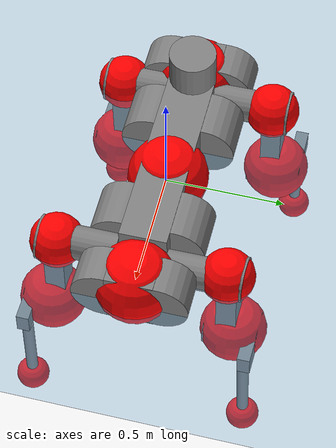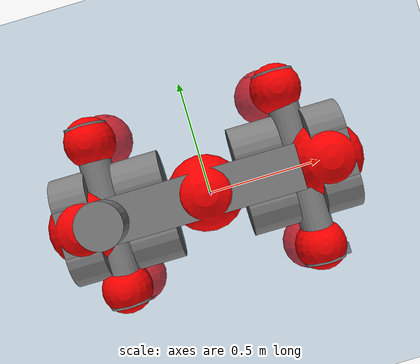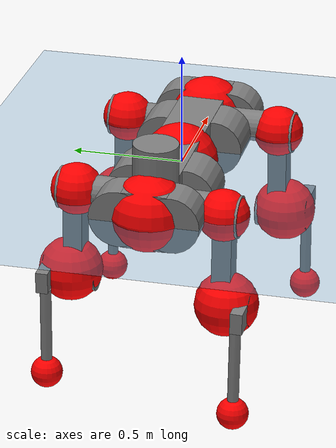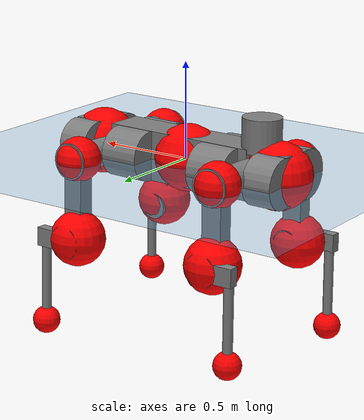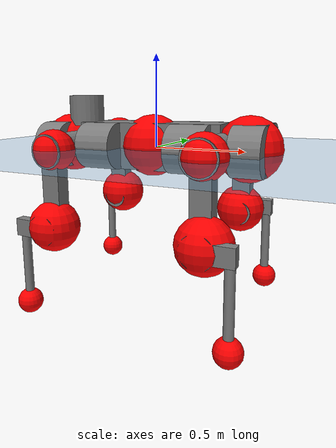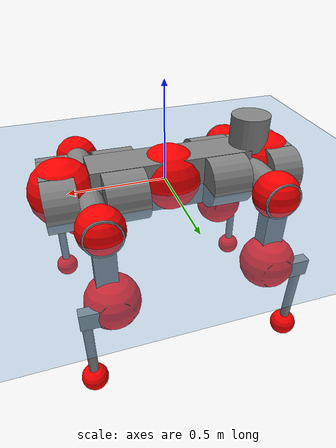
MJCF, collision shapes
<mujoco model="anymal_c">
  <compiler angle="radian" assetdir="assets" balanceinertia="true" inertiafromgeom="false"/>

  <option timestep="0.005" density="1.2" viscosity="2e-05"/>

  <size nkey="1"/>

  <visual>
    <quality shadowsize="8192"/>
    <map shadowclip="0.5"/>
  </visual>

  <default>
    <default class="/">
      <material specular="0" shininess="0.25"/>
      <geom contype="0" conaffinity="0" group="1" solref="-1000 -80"/>
      <site size="0.01 0.005 0.005" group="5"/>
      <general forcelimited="true" forcerange="-80 80" biastype="affine" gainprm="80" biasprm="0 -80 -2"/>
      <default class="anymal_c">
        <joint armature="0.01" damping="0.01" frictionloss="0.1"/>
        <default class="visual">
          <geom type="mesh" group="2"/>
          <default class="visual_zflip"/>
        </default>
        <default class="collision">
          <geom type="cylinder" group="3"/>
          <default class="foot">
            <geom size="0.03 0 0" type="sphere" condim="6" priority="1" friction="0.8 0.02 0.01" solimp="0.015 1 0.03"/>
          </default>
        </default>
      </default>
      <default class="reward_collision_sphere">
        <geom group="5" rgba="1 0 0 1"/>
      </default>
    </default>
  </default>

  <asset>
    <texture type="skybox" colorspace="auto" name="//unnamed_texture_0" builtin="gradient" rgb1="0.95 0.95 0.95" rgb2="0.95 0.95 0.95" width="100" height="600"/>
    <texture type="2d" colorspace="auto" name="texplane" builtin="checker" rgb1="0.345 0.575 0.748" rgb2="0.345 0.575 0.748" markrgb="1 1 1" width="512" height="512"/>
    <texture type="2d" colorspace="linear" name="base" file="base.png"/>
    <texture type="2d" colorspace="linear" name="top_shell" file="top_shell.png"/>
    <texture type="2d" colorspace="linear" name="bottom_shell" file="bottom_shell.png"/>
    <texture type="2d" colorspace="linear" name="remote" file="remote.png"/>
    <texture type="2d" colorspace="linear" name="hatch" file="hatch.png"/>
    <texture type="2d" colorspace="linear" name="handle" file="handle.png"/>
    <texture type="2d" colorspace="linear" name="face" file="face.png"/>
    <texture type="2d" colorspace="linear" name="battery" file="battery.png"/>
    <texture type="2d" colorspace="linear" name="lidar_cage" file="lidar_cage.png"/>
    <texture type="2d" colorspace="linear" name="depth_camera" file="depth_camera.png"/>
    <texture type="2d" colorspace="linear" name="wide_angle_camera" file="wide_angle_camera.png"/>
    <texture type="2d" colorspace="linear" name="lidar" file="lidar.png"/>
    <texture type="2d" colorspace="linear" name="drive" file="drive.png"/>
    <texture type="2d" colorspace="linear" name="hip_l" file="hip_l.png"/>
    <texture type="2d" colorspace="linear" name="shank_l" file="shank_l.png"/>
    <texture type="2d" colorspace="linear" name="foot" file="foot.png"/>
    <texture type="2d" colorspace="linear" name="thigh" file="thigh.png"/>
    <texture type="2d" colorspace="linear" name="shank_r" file="shank_r.png"/>
    <texture type="2d" colorspace="linear" name="hip_r" file="hip_r.png"/>
    <material name="MatPlane" class="/" texture="texplane" texuniform="true" texrepeat="2 2" specular="0.9" shininess="0.5"/>
    <material name="black_plastic" class="/" rgba="0.007 0.007 0.007 1"/>
    <material name="green" class="/" rgba="0.052 0.178 0.033 1"/>
    <material name="red" class="/" rgba="0.178 0.006 0.005 1"/>
    <material name="yellow" class="/" rgba="0.178 0.119 0.006 1"/>
    <material name="lwl" class="/" rgba="0.8 0.8 0.8 1"/>
    <material name="base" class="/" texture="base"/>
    <material name="top_shell" class="/" texture="top_shell"/>
    <material name="bottom_shell" class="/" texture="bottom_shell"/>
    <material name="hip_l" class="/" texture="hip_l"/>
    <material name="thigh" class="/" texture="thigh"/>
    <material name="shank_l" class="/" texture="shank_l"/>
    <material name="foot" class="/" texture="foot"/>
    <material name="hip_r" class="/" texture="hip_r"/>
    <material name="shank" class="/" texture="shank_r"/>
    <material name="hatch" class="/" texture="hatch"/>
    <material name="remote" class="/" texture="remote"/>
    <material name="handle" class="/" texture="handle"/>
    <material name="face" class="/" texture="face"/>
    <material name="depth_camera" class="/" texture="depth_camera"/>
    <material name="wide_angle_camera" class="/" texture="wide_angle_camera"/>
    <material name="battery" class="/" texture="battery"/>
    <material name="lidar_cage" class="/" texture="lidar_cage"/>
    <material name="lidar" class="/" texture="lidar"/>
    <material name="drive" class="/" texture="drive"/>
    <mesh name="base_0" class="/" file="base_0.obj"/>
    <mesh name="base_1" class="/" file="base_1.obj"/>
    <mesh name="base_2" class="/" file="base_2.obj"/>
    <mesh name="base_3" class="/" file="base_3.obj"/>
    <mesh name="base_4" class="/" file="base_4.obj"/>
    <mesh name="base_5" class="/" file="base_5.obj"/>
    <mesh name="top_shell" class="/" file="top_shell.obj"/>
    <mesh name="bottom_shell" class="/" file="bottom_shell.obj"/>
    <mesh name="remote" class="/" file="remote.obj"/>
    <mesh name="handle" class="/" file="handle.obj"/>
    <mesh name="face" class="/" file="face.obj"/>
    <mesh name="wide_angle_camera" class="/" file="wide_angle_camera.obj"/>
    <mesh name="depth_camera" class="/" file="depth_camera.obj"/>
    <mesh name="battery" class="/" file="battery.obj"/>
    <mesh name="lidar_cage" class="/" file="lidar_cage.obj"/>
    <mesh name="lidar" class="/" file="lidar.obj"/>
    <mesh name="drive" class="/" file="drive.obj"/>
    <mesh name="hip_l" class="/" file="hip_l.obj"/>
    <mesh name="thigh" class="/" file="thigh.obj"/>
    <mesh name="shank_l" class="/" file="shank_l.obj"/>
    <mesh name="foot" class="/" file="foot.obj"/>
    <mesh name="hip_r" class="/" file="hip_r.obj"/>
    <mesh name="hatch" class="/" file="hatch.obj"/>
    <mesh name="shank_r" class="/" file="shank_r.obj"/>
  </asset>

  <worldbody>
    <geom name="floor" class="/" size="100 100 0.125" type="plane" group="0" material="MatPlane"/>
    <light name="toplight_shadow" class="/" pos="0 0 5" dir="0.0990148 0.0990148 -0.990148" type="directional" ambient="0.04 0.04 0.04" diffuse="0.55 0.55 0.55" specular="0.12 0.12 0.12"/>
    <light name="toplight_fill" class="/" pos="0 0 5" dir="0.0990148 0.0990148 -0.990148" type="directional" castshadow="false" ambient="0.04 0.04 0.04" diffuse="0.3 0.3 0.3" specular="0.08 0.08 0.08"/>
    <body name="trunk" childclass="anymal_c" pos="-0.0194292 0.00513848 0.0117209" quat="0.99996 0.00828057 -0.00312639 -0.00154999">
      <inertial pos="0.0217135 -0.0113998 0.0792239" quat="0.519291 0.512303 0.49543 0.471626" mass="59.8839" diaginertia="1.38334 6.28994 1.0183"/>
      <joint name="//unnamed_joint_0" type="free" armature="0" damping="0" frictionloss="0"/>
      <geom name="//unnamed_geom_1" class="visual" material="green" mesh="base_0"/>
      <geom name="//unnamed_geom_2" class="visual" material="yellow" mesh="base_1"/>
      <geom name="//unnamed_geom_3" class="visual" material="red" mesh="base_2"/>
      <geom name="//unnamed_geom_4" class="visual" material="black_plastic" mesh="base_3"/>
      <geom name="//unnamed_geom_5" class="visual" material="lwl" mesh="base_4"/>
      <geom name="//unnamed_geom_6" class="visual" material="base" mesh="base_5"/>
      <geom name="trunk_1" class="collision" size="0.413423 0.0997918 0.128304" type="box"/>
      <geom name="trunk_2" class="collision" size="0.128304 0.103356" pos="0.261033 0.114488 0" quat="0.707107 0 0.707107 0"/>
      <geom name="trunk_3" class="collision" size="0.128304 0.103356" pos="-0.261033 0.114488 0" quat="0.707107 0 0.707107 0"/>
      <geom name="trunk_4" class="collision" size="0.128304 0.103356" pos="0.261033 -0.114488 0" quat="0.707107 0 0.707107 0"/>
      <geom name="trunk_5" class="collision" size="0.128304 0.103356" pos="-0.261033 -0.114488 0" quat="0.707107 0 0.707107 0"/>
      <geom name="//unnamed_geom_12" class="visual" material="top_shell" mesh="top_shell"/>
      <geom name="//unnamed_geom_13" class="visual" material="bottom_shell" mesh="bottom_shell"/>
      <geom name="//unnamed_geom_14" class="visual" material="remote" mesh="remote"/>
      <geom name="//unnamed_geom_15" class="visual" material="handle" mesh="handle"/>
      <geom name="//unnamed_geom_16" class="visual" pos="0.497463 0 0" quat="1 0 0 0" material="face" mesh="face"/>
      <geom name="trunk_6" class="collision" size="0.0784079 0.0997918 0.128304" pos="0.563472 0 0" type="box"/>
      <geom name="//unnamed_geom_18" class="collision" size="0.128304 0.0784079" pos="0.563472 0.114488 0" quat="0.707107 0 0.707107 0"/>
      <geom name="//unnamed_geom_19" class="collision" size="0.128304 0.0784079" pos="0.563472 -0.114488 0" quat="0.707107 0 0.707107 0"/>
      <geom name="//unnamed_geom_20" class="visual" pos="0.554061 0 -0.0439112" quat="0.965926 0 0.258819 0" material="depth_camera" mesh="depth_camera"/>
      <geom name="//unnamed_geom_21" class="visual" pos="0.615678 0 0.0215732" material="wide_angle_camera" mesh="wide_angle_camera"/>
      <geom name="//unnamed_geom_22" class="visual_zflip" pos="-0.497463 0 0" quat="0 0 0 1" material="face" mesh="face"/>
      <geom name="trunk_7" class="collision" size="0.0784079 0.0997918 0.128304" pos="-0.563472 0 0" quat="0 0 0 1" type="box"/>
      <geom name="//unnamed_geom_24" class="collision" size="0.128304 0.0784079" pos="-0.563472 -0.114488 0" quat="0 -0.707107 0 0.707107"/>
      <geom name="//unnamed_geom_25" class="collision" size="0.128304 0.0784079" pos="-0.563472 0.114488 0" quat="0 -0.707107 0 0.707107"/>
      <geom name="//unnamed_geom_26" class="visual" pos="-0.554061 0 -0.0439112" quat="0 -0.258819 0 0.965926" material="depth_camera" mesh="depth_camera"/>
      <geom name="//unnamed_geom_27" class="visual_zflip" pos="-0.615678 0 0.0215732" quat="0 0 0 1" material="wide_angle_camera" mesh="wide_angle_camera"/>
      <geom name="//unnamed_geom_28" class="visual" material="battery" mesh="battery"/>
      <geom name="//unnamed_geom_29" class="visual" pos="0 0.130777 0.0400327" quat="0.683013 -0.183013 0.183013 0.683013" material="depth_camera" mesh="depth_camera"/>
      <geom name="//unnamed_geom_30" class="visual" pos="0 -0.130777 0.0400327" quat="0.683013 0.183013 0.183013 -0.683013" material="depth_camera" mesh="depth_camera"/>
      <geom name="//unnamed_geom_31" class="visual" pos="-0.436856 0 0.105921" quat="1 0 0 0" material="lidar_cage" mesh="lidar_cage"/>
      <geom name="trunk_8" class="collision" size="0.0997918 0.0855358" pos="-0.436856 0 0.192386"/>
      <geom name="//unnamed_geom_33" class="visual" pos="-0.436856 0.000171053 0.204924" quat="0.707107 0 0 -0.707107" material="lidar" mesh="lidar"/>
      <geom name="//unnamed_geom_34" class="visual" pos="0.359926 0.170027 3.3542e-09" quat="0.258819 0.965926 0 0" material="drive" mesh="drive"/>
      <geom name="//unnamed_geom_35" class="visual" pos="0.359926 -0.170027 -3.3542e-09" quat="0.258819 -0.965926 0 0" material="drive" mesh="drive"/>
      <geom name="//unnamed_geom_36" class="visual" pos="-0.359926 0.170027 -3.3542e-09" quat="0 0 0.965926 -0.258819" material="drive" mesh="drive"/>
      <geom name="//unnamed_geom_37" class="visual" pos="-0.359926 -0.170027 3.3542e-09" quat="0 0 -0.965926 -0.258819" material="drive" mesh="drive"/>
      <geom name="//unnamed_geom_38" class="visual" pos="0.139218 0 0.1052" quat="1 0 0 0" material="hatch" mesh="hatch"/>
      <geom name="//unnamed_geom_39" class="reward_collision_sphere" size="0.171072"/>
      <geom name="//unnamed_geom_40" class="reward_collision_sphere" size="0.171072" pos="0.540069 0 0"/>
      <geom name="//unnamed_geom_41" class="reward_collision_sphere" size="0.171072" pos="-0.540069 0 0"/>
      <site name="imu" pos="0.325643 -0.0495653 -0.0209329" size="0.014256"/>
      <camera name="track" pos="0 -3.27108 0" quat="0.707107 0.707107 0 0" mode="trackcom"/>
      <camera name="ego_camera" pos="0.540069 0 -0.0576439" quat="-0.5 -0.5 0.5 0.5"/>
      <body name="LF_HIP" pos="0.360446 0.17913 -0.0109431" quat="0.254367 0.967102 -0.00341188 0.00035756">
        <inertial pos="0.0600182 -0.0100509 -0.0054694" quat="-0.119981 0.699943 -0.114307 0.694708" mass="8.31351" diaginertia="0.00992258 0.0438443 0.0201776"/>
        <joint name="LF_HAA" pos="0 0 0" axis="0.9954 0.0068195 0.0955667" stiffness="0.0520747" range="-1.09864 0.610646" armature="0.0157849" damping="0" frictionloss="0.12724"/>
        <geom name="//unnamed_geom_42" class="visual" pos="0 0.000197312 -3.24084e-05" quat="0.258819 -0.965926 0 0" material="hip_l" mesh="hip_l"/>
        <geom name="//unnamed_geom_43" class="visual" pos="0.0718891 -0.0927725 -0.052124" quat="0.183013 -0.683013 0.683013 0.183013" material="drive" mesh="drive"/>
        <geom name="//unnamed_geom_44" class="collision" size="0.0712799 0.0997918" pos="0.0718892 -0.0195608 -0.00995078" quat="-0.353553 -0.612372 0.612372 -0.353553"/>
        <body name="LF_THIGH" pos="0.05983 -0.124185 -0.0732129" quat="0.180593 -0.688927 0.677702 0.182989">
          <inertial pos="0.022247 0.013879 -0.336274" quat="0.99326 -0.00282454 -0.0780167 0.0856724" mass="11.2045" diaginertia="0.0760065 0.388123 0.0232079"/>
          <joint name="LF_HFE" pos="0 0 0" axis="0.998778 -0.00236922 -0.0493693" stiffness="0.0985898" range="-3.36826 3.19097" armature="0.022475" damping="0" frictionloss="0.213943"/>
          <geom name="//unnamed_geom_45" class="visual" pos="-0.00866254 -1.36501e-05 0" quat="0.707107 0 0 -0.707107" material="thigh" mesh="thigh"/>
          <geom name="//unnamed_geom_46" class="collision" size="0.0926638 0.0570239" pos="0.0480061 0 0" quat="0.5 0.5 -0.5 -0.5"/>
          <geom name="//unnamed_geom_47" class="collision" size="0.0534599 0.0427679 0.201457" pos="0.0360046 0 -0.203647" quat="0.707107 0 0 -0.707107" type="box"/>
          <geom name="//unnamed_geom_48" class="visual" pos="0.120375 0 -0.410713" quat="1 0 0 0" material="drive" mesh="drive"/>
          <geom name="//unnamed_geom_49" class="collision" size="0.0712799 0.0997918" pos="0.0363646 0 -0.410713" quat="0.707107 0 0.707107 0"/>
          <geom name="//unnamed_geom_50" class="reward_collision_sphere" size="0.114048" pos="0.0300038 0 0"/>
          <body name="LF_SHANK" pos="0.114218 0.017925 -0.407779" quat="0.999977 0.00200118 -0.00585739 0.00282338">
            <inertial pos="0.0227119 -0.0973928 -0.13042" quat="0.987957 -0.136073 -0.0160148 -0.0718989" mass="1.59679" diaginertia="0.0221897 0.0673153 0.00462741"/>
            <joint name="LF_KFE" pos="0 0 0" axis="0.998736 -0.00618919 -0.0498824" range="-2.78416 3.04346" armature="0.00612722" damping="0.0985443" frictionloss="0.0543415"/>
            <geom name="//unnamed_geom_51" class="visual" pos="-0.00282466 -0.0150613 0" quat="0.707107 0 0 -0.707107" material="shank_l" mesh="shank_l"/>
            <geom name="LF_kfe_act" class="collision" size="0.0855358 0.0285119" pos="0.0240031 0 0" quat="0.5 0.5 -0.5 -0.5"/>
            <geom name="//unnamed_geom_53" class="collision" size="0.0819704 0.0481139 0.0270863" pos="0.0240031 -0.094042 0" quat="0.5 0.5 -0.5 -0.5" type="box"/>
            <geom name="//unnamed_geom_54" class="visual" pos="0.0156627 -0.1487 -0.487048" quat="0.382683 0 0 -0.92388" material="foot" mesh="foot"/>
            <geom name="LF_calf" class="collision" size="0.024948 0.201368" pos="0.015662 -0.143846 -0.243524" quat="0.707107 0 0 -0.707107"/>
            <geom name="LF_foot" class="foot" size="0.0370916" pos="0.015662 -0.143846 -0.454623" quat="0.707107 0 0 -0.707107"/>
            <geom name="//unnamed_geom_57" class="reward_collision_sphere" size="0.14256" pos="-0.0600076 0 0"/>
            <geom name="//unnamed_geom_58" class="reward_collision_sphere" size="0.0712799" pos="0.015662 -0.143846 -0.454623"/>
            <site name="LF_foot" class="foot" pos="0.015662 -0.143846 -0.454623" quat="0.707107 0 0 -0.707107" size="0.014256"/>
          </body>
        </body>
      </body>
      <body name="RF_HIP" pos="0.353529 -0.179235 0.0180816" quat="0.252713 -0.967531 0.00126756 -0.00431648">
        <inertial pos="0.0558232 0.0421302 -0.00986493" quat="0.174849 0.701466 0.180534 0.666919" mass="8.02032" diaginertia="0.0201522 0.0671625 0.0278577"/>
        <joint name="RF_HAA" pos="0 0 0" axis="0.998048 -0.0604481 0.0157198" stiffness="0.0425351" range="-0.68778 0.685208" armature="0.00814517" damping="0" frictionloss="0.260729"/>
        <geom name="//unnamed_geom_59" class="visual" pos="0 -0.000197311 -3.24083e-05" quat="0.258819 0.965926 0 0" material="hip_r" mesh="hip_r"/>
        <geom name="//unnamed_geom_60" class="visual" pos="0.0718892 0.0927725 -0.052124" quat="0.183013 0.683013 0.683013 -0.183013" material="drive" mesh="drive"/>
        <geom name="//unnamed_geom_61" class="collision" size="0.0712799 0.0997918" pos="0.0718892 0.0195608 -0.00995078" quat="-0.353553 0.612372 0.612372 0.353553"/>
        <body name="RF_THIGH" pos="0.0696683 0.137926 -0.0597683" quat="0.184211 0.6824 0.682879 -0.184587">
          <inertial pos="0.0242044 0.0154383 -0.348409" quat="0.99052 -0.0746536 -0.0754581 0.0872007" mass="8.48297" diaginertia="0.0925538 0.450389 0.02377"/>
          <joint name="RF_HFE" pos="0 0 0" axis="0.99991 -0.0133977 -0.000590688" stiffness="0.0650647" range="-3.0142 2.82088" armature="0.0150759" damping="0.0459743" frictionloss="0.0619348"/>
          <geom name="//unnamed_geom_62" class="visual" pos="-0.00866254 -1.36501e-05 0" quat="0.707107 0 0 -0.707107" material="thigh" mesh="thigh"/>
          <geom name="//unnamed_geom_63" class="collision" size="0.0926638 0.0570239" pos="0.0480061 0 0" quat="0.5 0.5 0.5 0.5"/>
          <geom name="//unnamed_geom_64" class="collision" size="0.0534599 0.0427679 0.201457" pos="0.0360046 0 -0.203647" quat="0.707107 0 0 0.707107" type="box"/>
          <geom name="//unnamed_geom_65" class="visual" pos="0.120375 0 -0.410713" quat="1 0 0 0" material="drive" mesh="drive"/>
          <geom name="//unnamed_geom_66" class="collision" size="0.0712799 0.0997918" pos="0.0363646 0 -0.410713" quat="0.707107 0 0.707107 0"/>
          <geom name="//unnamed_geom_67" class="reward_collision_sphere" size="0.114048" pos="0.0300038 0 0"/>
          <body name="RF_SHANK" pos="0.121222 0.0158616 -0.401002" quat="1 0.000383917 0.000159387 1.78369e-05">
            <inertial pos="0.00934301 0.095233 -0.1198" quat="0.984096 0.173251 0.00957783 -0.0380362" mass="1.77188" diaginertia="0.0254132 0.1068 0.00811607"/>
            <joint name="RF_KFE" pos="0 0 0" axis="0.995752 0.0617488 -0.0682963" stiffness="0.0841144" range="-3.23553 2.84698" armature="0.0216188" damping="0" frictionloss="0.219283"/>
            <geom name="//unnamed_geom_68" class="visual" pos="-0.00282465 0.0150612 0" quat="0.707107 0 0 0.707107" material="shank" mesh="shank_r"/>
            <geom name="RF_kfe_act" class="collision" size="0.0855358 0.0285119" pos="0.0240031 0 0" quat="0.5 0.5 0.5 0.5"/>
            <geom name="//unnamed_geom_70" class="collision" size="0.0819704 0.0481139 0.0270863" pos="0.0240031 0.094042 0" quat="0.5 0.5 0.5 0.5" type="box"/>
            <geom name="//unnamed_geom_71" class="visual" pos="0.0156613 0.1487 -0.487048" quat="0.382683 0 0 0.92388" material="foot" mesh="foot"/>
            <geom name="RF_calf" class="collision" size="0.024948 0.201368" pos="0.015662 0.143846 -0.243524" quat="0.707107 0 0 0.707107"/>
            <geom name="RF_foot" class="foot" size="0.0575222" pos="0.015662 0.143846 -0.454623" quat="0.707107 0 0 0.707107"/>
            <geom name="//unnamed_geom_74" class="reward_collision_sphere" size="0.14256" pos="-0.0600076 0 0"/>
            <geom name="//unnamed_geom_75" class="reward_collision_sphere" size="0.0712799" pos="0.015662 0.143846 -0.454623"/>
            <site name="RF_foot" class="foot" pos="0.015662 0.143846 -0.454623" quat="0.707107 0 0 0.707107" size="0.014256"/>
          </body>
        </body>
      </body>
      <body name="LH_HIP" pos="-0.3567 0.167162 0.0151275" quat="-0.00105561 0.000700309 0.966288 -0.257459">
        <inertial pos="0.0577042 0.00653627 0.00309076" quat="0.177363 0.607604 0.125731 0.763906" mass="5.60746" diaginertia="0.0122399 0.0544634 0.014375"/>
        <joint name="LH_HAA" pos="0 0 0" axis="0.999837 -0.00944493 -0.0154129" range="-0.360043 0.984442" armature="0.0249323" damping="0.0477819" frictionloss="0.019273"/>
        <geom name="//unnamed_geom_76" class="visual" pos="0 -0.000197311 -3.24083e-05" quat="-0.258819 -0.965926 0 0" material="hip_r" mesh="hip_r"/>
        <geom name="//unnamed_geom_77" class="visual" pos="0.0718892 0.0927725 -0.052124" quat="0.183013 0.683013 0.683013 -0.183013" material="drive" mesh="drive"/>
        <geom name="//unnamed_geom_78" class="collision" size="0.0712799 0.0997918" pos="0.0718892 0.0195608 -0.00995078" quat="-0.353553 0.612372 0.612372 0.353553"/>
        <body name="LH_THIGH" pos="0.068355 0.135621 -0.0776406" quat="0.182522 0.685335 0.680947 -0.182519">
          <inertial pos="0.0356916 0.00198146 -0.361185" quat="0.993717 0.0400568 -0.0810701 0.0659501" mass="6.07501" diaginertia="0.0632145 0.283566 0.0190819"/>
          <joint name="LH_HFE" pos="0 0 0" axis="0.99777 0.00415884 0.0666184" range="-3.23852 3.03738" armature="0.00410412" damping="0.0811377" frictionloss="0.134971"/>
          <geom name="//unnamed_geom_79" class="visual" pos="-0.00866254 -1.36501e-05 0" quat="0.707107 0 0 -0.707107" material="thigh" mesh="thigh"/>
          <geom name="//unnamed_geom_80" class="collision" size="0.0926638 0.0570239" pos="0.0480061 0 0" quat="0.5 0.5 -0.5 -0.5"/>
          <geom name="//unnamed_geom_81" class="collision" size="0.0534599 0.0427679 0.201457" pos="0.0360046 0 -0.203647" quat="0.707107 0 0 -0.707107" type="box"/>
          <geom name="//unnamed_geom_82" class="visual" pos="0.120375 0 -0.410713" quat="1 0 0 0" material="drive" mesh="drive"/>
          <geom name="//unnamed_geom_83" class="collision" size="0.0712799 0.0997918" pos="0.0363646 0 -0.410713" quat="0.707107 0 0.707107 0"/>
          <geom name="//unnamed_geom_84" class="reward_collision_sphere" size="0.114048" pos="0.0300038 0 0"/>
          <body name="LH_SHANK" pos="0.117575 0.000780593 -0.392675" quat="0.999993 -0.000661352 0.00350608 0.00149069">
            <inertial pos="0.0166082 0.0811894 -0.121351" quat="0.993899 0.0988258 0.0482754 -0.00816982" mass="1.507" diaginertia="0.0257171 0.0891495 0.00756516"/>
            <joint name="LH_KFE" pos="0 0 0" axis="0.999367 0.0096095 0.0342445" stiffness="0.0975743" range="-3.10838 2.91205" armature="0.00576928" damping="0.07283" frictionloss="0.00927551"/>
            <geom name="//unnamed_geom_85" class="visual" pos="-0.00282465 0.0150612 0" quat="-0.707107 0 0 -0.707107" material="shank" mesh="shank_r"/>
            <geom name="LH_kfe_act" class="collision" size="0.0855358 0.0285119" pos="0.0240031 0 0" quat="0.5 0.5 -0.5 -0.5"/>
            <geom name="//unnamed_geom_87" class="collision" size="0.0819704 0.0481139 0.0270863" pos="0.0240031 0.094042 0" quat="0.5 0.5 -0.5 -0.5" type="box"/>
            <geom name="//unnamed_geom_88" class="visual" pos="0.0156613 0.1487 -0.487048" quat="-0.382683 0 0 -0.92388" material="foot" mesh="foot"/>
            <geom name="LH_calf" class="collision" size="0.024948 0.201368" pos="0.015662 0.143846 -0.243524" quat="0.707107 0 0 -0.707107"/>
            <geom name="LH_foot" class="foot" size="0.0621441" pos="0.015662 0.143846 -0.454623" quat="0.707107 0 0 -0.707107"/>
            <geom name="//unnamed_geom_91" class="reward_collision_sphere" size="0.14256" pos="-0.0600076 0 0"/>
            <geom name="//unnamed_geom_92" class="reward_collision_sphere" size="0.0712799" pos="0.015662 0.143846 -0.454623"/>
            <site name="LH_foot" class="foot" pos="0.015662 0.143846 -0.454623" quat="0.707107 0 0 -0.707107" size="0.014256"/>
          </body>
        </body>
      </body>
      <body name="RH_HIP" pos="-0.369886 -0.157855 0.00705885" quat="0.00512898 -0.00763741 -0.966068 -0.258126">
        <inertial pos="0.0492154 -0.0400983 0.00672794" quat="-0.150179 0.702129 -0.0678585 0.692717" mass="7.70366" diaginertia="0.0148218 0.0589247 0.0212644"/>
        <joint name="RH_HAA" pos="0 0 0" axis="0.995416 0.0869139 -0.0399086" range="-0.922072 0.353882" armature="0.0232389" damping="0.0435766" frictionloss="0.0894642"/>
        <geom name="//unnamed_geom_93" class="visual" pos="0 0.000197312 -3.24084e-05" quat="-0.258819 0.965926 0 0" material="hip_l" mesh="hip_l"/>
        <geom name="//unnamed_geom_94" class="visual" pos="0.0718891 -0.0927725 -0.052124" quat="-0.183013 0.683013 -0.683013 -0.183013" material="drive" mesh="drive"/>
        <geom name="//unnamed_geom_95" class="collision" size="0.0712799 0.0997918" pos="0.0718892 -0.0195608 -0.00995078" quat="0.353553 0.612372 -0.612372 0.353553"/>
        <body name="RH_THIGH" pos="0.0805726 -0.113525 -0.0415267" quat="-0.183168 0.683323 -0.682808 -0.182461">
          <inertial pos="0.0432928 -0.00279514 -0.353122" quat="0.99116 -0.00526072 -0.0901645 0.0971846" mass="10.7779" diaginertia="0.0821511 0.289431 0.0252903"/>
          <joint name="RH_HFE" pos="0 0 0" axis="0.999282 -0.0349715 0.0145484" range="-3.17406 2.80523" armature="0.0182662" damping="0" frictionloss="0.0890231"/>
          <geom name="//unnamed_geom_96" class="visual" pos="-0.00866254 -1.36501e-05 0" quat="0.707107 0 0 -0.707107" material="thigh" mesh="thigh"/>
          <geom name="//unnamed_geom_97" class="collision" size="0.0926638 0.0570239" pos="0.0480061 0 0" quat="0.5 0.5 0.5 0.5"/>
          <geom name="//unnamed_geom_98" class="collision" size="0.0534599 0.0427679 0.201457" pos="0.0360046 0 -0.203647" quat="0.707107 0 0 0.707107" type="box"/>
          <geom name="//unnamed_geom_99" class="visual" pos="0.120375 0 -0.410713" quat="1 0 0 0" material="drive" mesh="drive"/>
          <geom name="//unnamed_geom_100" class="collision" size="0.0712799 0.0997918" pos="0.0363646 0 -0.410713" quat="0.707107 0 0.707107 0"/>
          <geom name="//unnamed_geom_101" class="reward_collision_sphere" size="0.114048" pos="0.0300038 0 0"/>
          <body name="RH_SHANK" pos="0.113683 -0.00406898 -0.422596" quat="0.999997 -0.00214604 0.000903624 -0.00106859">
            <inertial pos="0.0214676 -0.106413 -0.112627" quat="0.991736 -0.111237 -0.0626271 -0.0128015" mass="1.86352" diaginertia="0.0226 0.1056 0.00570243"/>
            <joint name="RH_KFE" pos="0 0 0" axis="0.99616 -0.00938951 0.0870511" stiffness="0.0149906" range="-2.93781 3.20324" armature="0.0203127" damping="0" frictionloss="0.205207"/>
            <geom name="//unnamed_geom_102" class="visual" pos="-0.00282466 -0.0150613 0" quat="0.707107 0 0 -0.707107" material="shank_l" mesh="shank_l"/>
            <geom name="RH_kfe_act" class="collision" size="0.0855358 0.0285119" pos="0.0240031 0 0" quat="0.5 0.5 0.5 0.5"/>
            <geom name="//unnamed_geom_104" class="collision" size="0.0819704 0.0481139 0.0270863" pos="0.0240031 -0.094042 0" quat="0.5 0.5 0.5 0.5" type="box"/>
            <geom name="//unnamed_geom_105" class="visual" pos="0.0156627 -0.1487 -0.487048" quat="0.382683 0 0 -0.92388" material="foot" mesh="foot"/>
            <geom name="RH_calf" class="collision" size="0.024948 0.201368" pos="0.015662 -0.143846 -0.243524" quat="0.707107 0 0 0.707107"/>
            <geom name="RH_foot" class="foot" size="0.0694317" pos="0.015662 -0.143846 -0.454623" quat="0.707107 0 0 0.707107"/>
            <geom name="//unnamed_geom_108" class="reward_collision_sphere" size="0.14256" pos="-0.0600076 0 0"/>
            <geom name="//unnamed_geom_109" class="reward_collision_sphere" size="0.0712799" pos="0.015662 -0.143846 -0.454623"/>
            <site name="RH_foot" class="foot" pos="0.015662 -0.143846 -0.454623" quat="0.707107 0 0 0.707107" size="0.014256"/>
          </body>
        </body>
      </body>
    </body>
  </worldbody>

  <contact>
    <pair class="/" geom1="floor" geom2="LF_foot" name="//unnamed_contact_0"/>
    <pair class="/" geom1="floor" geom2="RF_foot" name="//unnamed_contact_1"/>
    <pair class="/" geom1="floor" geom2="LH_foot" name="//unnamed_contact_2"/>
    <pair class="/" geom1="floor" geom2="RH_foot" name="//unnamed_contact_3"/>
  </contact>

  <actuator>
    <general name="LF_HAA" class="/" joint="LF_HAA" forcerange="-120.616 120.616" gainprm="77.131" biasprm="0 -77.131 -3.87898"/>
    <general name="LF_HFE" class="/" joint="LF_HFE" forcerange="-167.352 167.352" gainprm="77.131" biasprm="0 -77.131 -3.87898"/>
    <general name="LF_KFE" class="/" joint="LF_KFE" forcerange="-141.082 141.082" gainprm="77.131" biasprm="0 -77.131 -3.87898"/>
    <general name="RF_HAA" class="/" joint="RF_HAA" forcerange="-132.994 132.994" gainprm="77.131" biasprm="0 -77.131 -3.87898"/>
    <general name="RF_HFE" class="/" joint="RF_HFE" forcerange="-61.2299 61.2299" gainprm="77.131" biasprm="0 -77.131 -3.87898"/>
    <general name="RF_KFE" class="/" joint="RF_KFE" forcerange="-126.775 126.775" gainprm="77.131" biasprm="0 -77.131 -3.87898"/>
    <general name="LH_HAA" class="/" joint="LH_HAA" forcerange="-35.3012 35.3012" gainprm="77.131" biasprm="0 -77.131 -3.87898"/>
    <general name="LH_HFE" class="/" joint="LH_HFE" forcerange="-165.654 165.654" gainprm="77.131" biasprm="0 -77.131 -3.87898"/>
    <general name="LH_KFE" class="/" joint="LH_KFE" forcerange="-192.753 192.753" gainprm="77.131" biasprm="0 -77.131 -3.87898"/>
    <general name="RH_HAA" class="/" joint="RH_HAA" forcerange="-174.609 174.609" gainprm="77.131" biasprm="0 -77.131 -3.87898"/>
    <general name="RH_HFE" class="/" joint="RH_HFE" forcerange="-37.1869 37.1869" gainprm="77.131" biasprm="0 -77.131 -3.87898"/>
    <general name="RH_KFE" class="/" joint="RH_KFE" forcerange="-86.4471 86.4471" gainprm="77.131" biasprm="0 -77.131 -3.87898"/>
  </actuator>

  <sensor>
    <gyro site="imu" name="imu_angular_velocity"/>
    <velocimeter site="imu" name="imu_linear_velocity"/>
    <framelinvel objtype="site" objname="LF_foot" name="LF_foot_global_linear_velocity"/>
    <framelinvel objtype="site" objname="RF_foot" name="RF_foot_global_linear_velocity"/>
    <framelinvel objtype="site" objname="LH_foot" name="LH_foot_global_linear_velocity"/>
    <framelinvel objtype="site" objname="RH_foot" name="RH_foot_global_linear_velocity"/>
  </sensor>

  <keyframe>
    <key name="home" qpos="0 0 0.55 1 0 0 0 0 0.4 -0.8 0 -0.4 0.8 0 -0.4 0.8 0 0.4 -0.8"/>
  </keyframe>
</mujoco>
